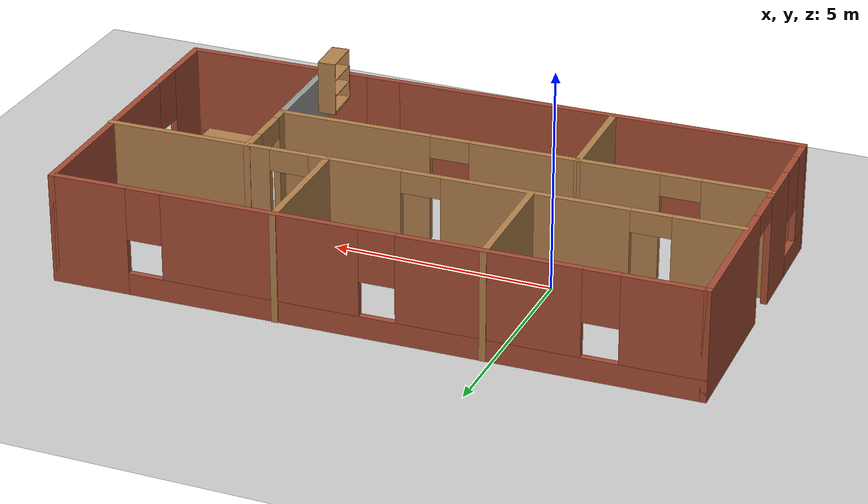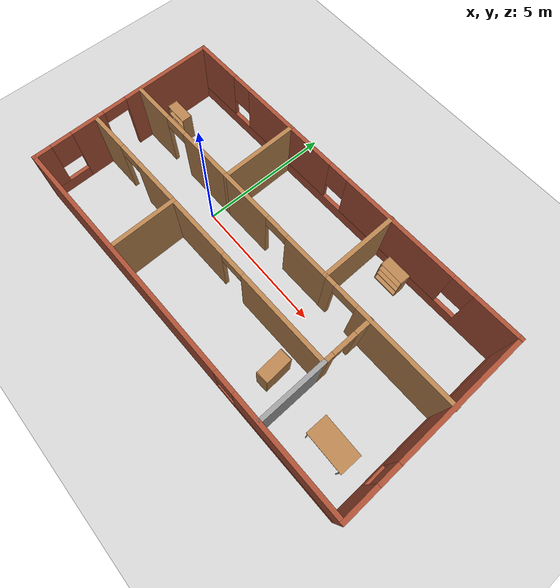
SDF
<sdf version="1.7">
 <world name="default">
  <light name="sun" type="directional">
   <pose>0 0 10 0 -0 0</pose>
   <diffuse>0.8 0.8 0.8 1</diffuse>
   <specular>0.2 0.2 0.2 1</specular>
   <attenuation>
    <range>1000</range>
    <constant>0.9</constant>
    <linear>0.01</linear>
    <quadratic>0.001</quadratic>
   </attenuation>
   <direction>-0.5 0.1 -0.9</direction>
   <spot><inner_angle>0</inner_angle><outer_angle>0</outer_angle><falloff>0</falloff></spot>
  </light>
  <model name="ground_plane">
   <static>1</static>
   <link name="link">
    <collision name="collision">
     <geometry><plane><normal>0 0 1</normal><size>100 100</size></plane></geometry>
     <surface><friction><ode><mu>100</mu><mu2>50</mu2></ode></friction></surface>
    </collision>
    <visual name="visual">
     <cast_shadows>0</cast_shadows>
     <geometry><plane><normal>0 0 1</normal><size>100 100</size></plane></geometry>
     <material>
      <script><uri>file://media/materials/scripts/gazebo.material</uri><name>Gazebo/Grey</name></script>
     </material>
    </visual>
   </link>
  </model>
  <gravity>0 0 -9.8</gravity>
  <magnetic_field>6e-06 2.3e-05 -4.2e-05</magnetic_field>
  <atmosphere type="adiabatic"/>
  <physics type="ode">
   <max_step_size>0.001</max_step_size>
   <real_time_factor>1</real_time_factor>
   <real_time_update_rate>1000</real_time_update_rate>
  </physics>
  <scene><ambient>0.4 0.4 0.4 1</ambient><background>0.7 0.7 0.7 1</background><shadows>1</shadows></scene>
  <audio><device>default</device></audio>
  <spherical_coordinates>
   <surface_model>EARTH_WGS84</surface_model>
   <latitude_deg>0</latitude_deg>
   <longitude_deg>0</longitude_deg>
   <elevation>0</elevation>
   <heading_deg>0</heading_deg>
  </spherical_coordinates>
  <model name="my_house">
   <pose>2.79719 -0.053628 0 0 0 -3.11693</pose>
   <link name="Wall_0">
    <pose>-7.165 0.01 0 0 -0 -1.5708</pose>
    <visual name="Wall_0_Visual_0">
     <pose>-2.9475 0 1.25 0 -0 0</pose>
     <geometry><box><size>1.355 0.15 2.5</size></box></geometry>
     <material>
      <script><uri>file://media/materials/scripts/gazebo.material</uri><name>Gazebo/Bricks</name></script>
      <ambient>1 1 1 1</ambient>
     </material>
     <meta><layer>0</layer></meta>
    </visual>
    <collision name="Wall_0_Collision_0">
     <geometry><box><size>1.355 0.15 2.5</size></box></geometry>
     <pose>-2.9475 0 1.25 0 -0 0</pose>
    </collision>
    <visual name="Wall_0_Visual_1">
     <pose>0.6775 0 0.25 0 -0 0</pose>
     <geometry><box><size>5.895 0.15 0.5</size></box></geometry>
     <material>
      <script><uri>file://media/materials/scripts/gazebo.material</uri><name>Gazebo/Bricks</name></script>
      <ambient>1 1 1 1</ambient>
     </material>
     <meta><layer>0</layer></meta>
    </visual>
    <collision name="Wall_0_Collision_1">
     <geometry><box><size>5.895 0.15 0.5</size></box></geometry>
     <pose>0.6775 0 0.25 0 -0 0</pose>
    </collision>
    <visual name="Wall_0_Visual_2">
     <pose>1.0775 0 1.5 0 -0 0</pose>
     <geometry><box><size>5.095 0.15 2</size></box></geometry>
     <material>
      <script><uri>file://media/materials/scripts/gazebo.material</uri><name>Gazebo/Bricks</name></script>
      <ambient>1 1 1 1</ambient>
     </material>
     <meta><layer>0</layer></meta>
    </visual>
    <collision name="Wall_0_Collision_2">
     <geometry><box><size>5.095 0.15 2</size></box></geometry>
     <pose>1.0775 0 1.5 0 -0 0</pose>
    </collision>
    <visual name="Wall_0_Visual_3">
     <pose>-1.87 0 1.9 0 -0 0</pose>
     <geometry><box><size>0.8 0.15 1.2</size></box></geometry>
     <material>
      <script><uri>file://media/materials/scripts/gazebo.material</uri><name>Gazebo/Bricks</name></script>
      <ambient>1 1 1 1</ambient>
     </material>
     <meta><layer>0</layer></meta>
    </visual>
    <collision name="Wall_0_Collision_3">
     <geometry><box><size>0.8 0.15 1.2</size></box></geometry>
     <pose>-1.87 0 1.9 0 -0 0</pose>
    </collision>
   </link>
   <link name="Wall_1">
    <pose>0.01 -3.54 0 0 -0 0</pose>
    <visual name="Wall_1_Visual_0">
     <pose>-6.3525 0 1.25 0 -0 0</pose>
     <geometry><box><size>1.795 0.15 2.5</size></box></geometry>
     <material>
      <script><uri>file://media/materials/scripts/gazebo.material</uri><name>Gazebo/Bricks</name></script>
      <ambient>1 1 1 1</ambient>
     </material>
     <meta><layer>0</layer></meta>
    </visual>
    <collision name="Wall_1_Collision_0">
     <geometry><box><size>1.795 0.15 2.5</size></box></geometry>
     <pose>-6.3525 0 1.25 0 -0 0</pose>
    </collision>
    <visual name="Wall_1_Visual_1">
     <pose>0.8975 0 0.25 0 -0 0</pose>
     <geometry><box><size>12.705 0.15 0.5</size></box></geometry>
     <material>
      <script><uri>file://media/materials/scripts/gazebo.material</uri><name>Gazebo/Bricks</name></script>
      <ambient>1 1 1 1</ambient>
     </material>
     <meta><layer>0</layer></meta>
    </visual>
    <collision name="Wall_1_Collision_1">
     <geometry><box><size>12.705 0.15 0.5</size></box></geometry>
     <pose>0.8975 0 0.25 0 -0 0</pose>
    </collision>
    <visual name="Wall_1_Visual_2">
     <pose>-2.43 0 1.5 0 -0 0</pose>
     <geometry><box><size>4.45 0.15 2</size></box></geometry>
     <material>
      <script><uri>file://media/materials/scripts/gazebo.material</uri><name>Gazebo/Bricks</name></script>
      <ambient>1 1 1 1</ambient>
     </material>
     <meta><layer>0</layer></meta>
    </visual>
    <collision name="Wall_1_Collision_2">
     <geometry><box><size>4.45 0.15 2</size></box></geometry>
     <pose>-2.43 0 1.5 0 -0 0</pose>
    </collision>
    <visual name="Wall_1_Visual_3">
     <pose>2.595 0 1.5 0 -0 0</pose>
     <geometry><box><size>4 0.15 2</size></box></geometry>
     <material>
      <script><uri>file://media/materials/scripts/gazebo.material</uri><name>Gazebo/Bricks</name></script>
      <ambient>1 1 1 1</ambient>
     </material>
     <meta><layer>0</layer></meta>
    </visual>
    <collision name="Wall_1_Collision_3">
     <geometry><box><size>4 0.15 2</size></box></geometry>
     <pose>2.595 0 1.5 0 -0 0</pose>
    </collision>
    <visual name="Wall_1_Visual_4">
     <pose>6.3225 0 1.5 0 -0 0</pose>
     <geometry><box><size>1.855 0.15 2</size></box></geometry>
     <material>
      <script><uri>file://media/materials/scripts/gazebo.material</uri><name>Gazebo/Bricks</name></script>
      <ambient>1 1 1 1</ambient>
     </material>
     <meta><layer>0</layer></meta>
    </visual>
    <collision name="Wall_1_Collision_4">
     <geometry><box><size>1.855 0.15 2</size></box></geometry>
     <pose>6.3225 0 1.5 0 -0 0</pose>
    </collision>
    <visual name="Wall_1_Visual_5">
     <pose>-5.055 0 1.9 0 -0 0</pose>
     <geometry><box><size>0.8 0.15 1.2</size></box></geometry>
     <material>
      <script><uri>file://media/materials/scripts/gazebo.material</uri><name>Gazebo/Bricks</name></script>
      <ambient>1 1 1 1</ambient>
     </material>
     <meta><layer>0</layer></meta>
    </visual>
    <collision name="Wall_1_Collision_5">
     <geometry><box><size>0.8 0.15 1.2</size></box></geometry>
     <pose>-5.055 0 1.9 0 -0 0</pose>
    </collision>
    <visual name="Wall_1_Visual_6">
     <pose>0.195 0 1.9 0 -0 0</pose>
     <geometry><box><size>0.8 0.15 1.2</size></box></geometry>
     <material>
      <script><uri>file://media/materials/scripts/gazebo.material</uri><name>Gazebo/Bricks</name></script>
      <ambient>1 1 1 1</ambient>
     </material>
     <meta><layer>0</layer></meta>
    </visual>
    <collision name="Wall_1_Collision_6">
     <geometry><box><size>0.8 0.15 1.2</size></box></geometry>
     <pose>0.195 0 1.9 0 -0 0</pose>
    </collision>
    <visual name="Wall_1_Visual_7">
     <pose>4.995 0 1.9 0 -0 0</pose>
     <geometry><box><size>0.8 0.15 1.2</size></box></geometry>
     <material>
      <script><uri>file://media/materials/scripts/gazebo.material</uri><name>Gazebo/Bricks</name></script>
      <ambient>1 1 1 1</ambient>
     </material>
     <meta><layer>0</layer></meta>
    </visual>
    <collision name="Wall_1_Collision_7">
     <geometry><box><size>0.8 0.15 1.2</size></box></geometry>
     <pose>4.995 0 1.9 0 -0 0</pose>
    </collision>
   </link>
   <link name="Wall_11">
    <pose>-0.51 1.13 0 0 -0 3.14159</pose>
    <visual name="Wall_11_Visual_0">
     <pose>-2.2375 0 1.25 0 -0 0</pose>
     <geometry><box><size>2.525 0.15 2.5</size></box></geometry>
     <material>
      <script><uri>file://media/materials/scripts/gazebo.material</uri><name>Gazebo/Wood</name></script>
      <ambient>1 1 1 1</ambient>
     </material>
     <meta><layer>0</layer></meta>
    </visual>
    <collision name="Wall_11_Collision_0">
     <geometry><box><size>2.525 0.15 2.5</size></box></geometry>
     <pose>-2.2375 0 1.25 0 -0 0</pose>
    </collision>
    <visual name="Wall_11_Visual_1">
     <pose>1.7125 0 1.25 0 -0 0</pose>
     <geometry><box><size>3.575 0.15 2.5</size></box></geometry>
     <material>
      <script><uri>file://media/materials/scripts/gazebo.material</uri><name>Gazebo/Wood</name></script>
      <ambient>1 1 1 1</ambient>
     </material>
     <meta><layer>0</layer></meta>
    </visual>
    <collision name="Wall_11_Collision_1">
     <geometry><box><size>3.575 0.15 2.5</size></box></geometry>
     <pose>1.7125 0 1.25 0 -0 0</pose>
    </collision>
    <visual name="Wall_11_Visual_2">
     <pose>-0.525 0 2.25 0 -0 0</pose>
     <geometry><box><size>0.9 0.15 0.5</size></box></geometry>
     <material>
      <script><uri>file://media/materials/scripts/gazebo.material</uri><name>Gazebo/Wood</name></script>
      <ambient>1 1 1 1</ambient>
     </material>
     <meta><layer>0</layer></meta>
    </visual>
    <collision name="Wall_11_Collision_2">
     <geometry><box><size>0.9 0.15 0.5</size></box></geometry>
     <pose>-0.525 0 2.25 0 -0 0</pose>
    </collision>
   </link>
   <link name="Wall_12">
    <collision name="Wall_12_Collision">
     <geometry><box><size>2.5 0.15 2.5</size></box></geometry>
     <pose>0 0 1.25 0 -0 0</pose>
    </collision>
    <visual name="Wall_12_Visual">
     <pose>0 0 1.25 0 -0 0</pose>
     <geometry><box><size>2.5 0.15 2.5</size></box></geometry>
     <material>
      <script><uri>file://media/materials/scripts/gazebo.material</uri><name>Gazebo/Grey</name></script>
      <ambient>1 1 1 1</ambient>
     </material>
     <meta><layer>0</layer></meta>
    </visual>
    <pose>-3.935 2.305 0 0 -0 1.5708</pose>
   </link>
   <link name="Wall_14">
    <pose>0.215 -0.71 0 0 -0 3.14159</pose>
    <visual name="Wall_14_Visual_0">
     <pose>-1.3375 0 1.25 0 -0 0</pose>
     <geometry><box><size>2.075 0.15 2.5</size></box></geometry>
     <material>
      <script><uri>file://media/materials/scripts/gazebo.material</uri><name>Gazebo/Wood</name></script>
      <ambient>1 1 1 1</ambient>
     </material>
     <meta><layer>0</layer></meta>
    </visual>
    <collision name="Wall_14_Collision_0">
     <geometry><box><size>2.075 0.15 2.5</size></box></geometry>
     <pose>-1.3375 0 1.25 0 -0 0</pose>
    </collision>
    <visual name="Wall_14_Visual_1">
     <pose>1.4875 0 1.25 0 -0 0</pose>
     <geometry><box><size>1.775 0.15 2.5</size></box></geometry>
     <material>
      <script><uri>file://media/materials/scripts/gazebo.material</uri><name>Gazebo/Wood</name></script>
      <ambient>1 1 1 1</ambient>
     </material>
     <meta><layer>0</layer></meta>
    </visual>
    <collision name="Wall_14_Collision_1">
     <geometry><box><size>1.775 0.15 2.5</size></box></geometry>
     <pose>1.4875 0 1.25 0 -0 0</pose>
    </collision>
    <visual name="Wall_14_Visual_2">
     <pose>0.15 0 2.25 0 -0 0</pose>
     <geometry><box><size>0.9 0.15 0.5</size></box></geometry>
     <material>
      <script><uri>file://media/materials/scripts/gazebo.material</uri><name>Gazebo/Wood</name></script>
      <ambient>1 1 1 1</ambient>
     </material>
     <meta><layer>0</layer></meta>
    </visual>
    <collision name="Wall_14_Collision_2">
     <geometry><box><size>0.9 0.15 0.5</size></box></geometry>
     <pose>0.15 0 2.25 0 -0 0</pose>
    </collision>
   </link>
   <link name="Wall_15">
    <collision name="Wall_15_Collision">
     <geometry><box><size>3 0.15 2.5</size></box></geometry>
     <pose>0 0 1.25 0 -0 0</pose>
    </collision>
    <visual name="Wall_15_Visual">
     <pose>0 0 1.25 0 -0 0</pose>
     <geometry><box><size>3 0.15 2.5</size></box></geometry>
     <material>
      <script><uri>file://media/materials/scripts/gazebo.material</uri><name>Gazebo/Wood</name></script>
      <ambient>1 1 1 1</ambient>
     </material>
     <meta><layer>0</layer></meta>
    </visual>
    <pose>-2.085 -2.135 0 0 -0 -1.5708</pose>
   </link>
   <link name="Wall_17">
    <pose>-4.635 -0.71 0 0 -0 3.14159</pose>
    <visual name="Wall_17_Visual_0">
     <pose>-2.3775 0 1.25 0 -0 0</pose>
     <geometry><box><size>0.495 0.15 2.5</size></box></geometry>
     <material>
      <script><uri>file://media/materials/scripts/gazebo.material</uri><name>Gazebo/Wood</name></script>
      <ambient>1 1 1 1</ambient>
     </material>
     <meta><layer>0</layer></meta>
    </visual>
    <collision name="Wall_17_Collision_0">
     <geometry><box><size>0.495 0.15 2.5</size></box></geometry>
     <pose>-2.3775 0 1.25 0 -0 0</pose>
    </collision>
    <visual name="Wall_17_Visual_1">
     <pose>0.6975 0 1.25 0 -0 0</pose>
     <geometry><box><size>3.855 0.15 2.5</size></box></geometry>
     <material>
      <script><uri>file://media/materials/scripts/gazebo.material</uri><name>Gazebo/Wood</name></script>
      <ambient>1 1 1 1</ambient>
     </material>
     <meta><layer>0</layer></meta>
    </visual>
    <collision name="Wall_17_Collision_1">
     <geometry><box><size>3.855 0.15 2.5</size></box></geometry>
     <pose>0.6975 0 1.25 0 -0 0</pose>
    </collision>
    <visual name="Wall_17_Visual_2">
     <pose>-1.68 0 2.25 0 -0 0</pose>
     <geometry><box><size>0.9 0.15 0.5</size></box></geometry>
     <material>
      <script><uri>file://media/materials/scripts/gazebo.material</uri><name>Gazebo/Wood</name></script>
      <ambient>1 1 1 1</ambient>
     </material>
     <meta><layer>0</layer></meta>
    </visual>
    <collision name="Wall_17_Collision_2">
     <geometry><box><size>0.9 0.15 0.5</size></box></geometry>
     <pose>-1.68 0 2.25 0 -0 0</pose>
    </collision>
   </link>
   <link name="Wall_19">
    <pose>-3.935 0.205 0 0 -0 -1.5708</pose>
    <visual name="Wall_19_Visual_0">
     <pose>-0.7825 0 1.25 0 -0 0</pose>
     <geometry><box><size>0.435 0.15 2.5</size></box></geometry>
     <material>
      <script><uri>file://media/materials/scripts/gazebo.material</uri><name>Gazebo/Wood</name></script>
      <ambient>1 1 1 1</ambient>
     </material>
     <meta><layer>0</layer></meta>
    </visual>
    <collision name="Wall_19_Collision_0">
     <geometry><box><size>0.435 0.15 2.5</size></box></geometry>
     <pose>-0.7825 0 1.25 0 -0 0</pose>
    </collision>
    <visual name="Wall_19_Visual_1">
     <pose>0.6675 0 1.25 0 -0 0</pose>
     <geometry><box><size>0.665 0.15 2.5</size></box></geometry>
     <material>
      <script><uri>file://media/materials/scripts/gazebo.material</uri><name>Gazebo/Wood</name></script>
      <ambient>1 1 1 1</ambient>
     </material>
     <meta><layer>0</layer></meta>
    </visual>
    <collision name="Wall_19_Collision_1">
     <geometry><box><size>0.665 0.15 2.5</size></box></geometry>
     <pose>0.6675 0 1.25 0 -0 0</pose>
    </collision>
    <visual name="Wall_19_Visual_2">
     <pose>-0.115 0 2.25 0 -0 0</pose>
     <geometry><box><size>0.9 0.15 0.5</size></box></geometry>
     <material>
      <script><uri>file://media/materials/scripts/gazebo.material</uri><name>Gazebo/Wood</name></script>
      <ambient>1 1 1 1</ambient>
     </material>
     <meta><layer>0</layer></meta>
    </visual>
    <collision name="Wall_19_Collision_2">
     <geometry><box><size>0.9 0.15 0.5</size></box></geometry>
     <pose>-0.115 0 2.25 0 -0 0</pose>
    </collision>
   </link>
   <link name="Wall_2">
    <pose>7.185 0.01 0 0 -0 1.5708</pose>
    <visual name="Wall_2_Visual_0">
     <pose>-1.8525 0 1.25 0 -0 0</pose>
     <geometry><box><size>3.545 0.15 2.5</size></box></geometry>
     <material>
      <script><uri>file://media/materials/scripts/gazebo.material</uri><name>Gazebo/Bricks</name></script>
      <ambient>1 1 1 1</ambient>
     </material>
     <meta><layer>0</layer></meta>
    </visual>
    <collision name="Wall_2_Collision_0">
     <geometry><box><size>3.545 0.15 2.5</size></box></geometry>
     <pose>-1.8525 0 1.25 0 -0 0</pose>
    </collision>
    <visual name="Wall_2_Visual_1">
     <pose>1.47 0 1.25 0 -0 0</pose>
     <geometry><box><size>1.3 0.15 2.5</size></box></geometry>
     <material>
      <script><uri>file://media/materials/scripts/gazebo.material</uri><name>Gazebo/Bricks</name></script>
      <ambient>1 1 1 1</ambient>
     </material>
     <meta><layer>0</layer></meta>
    </visual>
    <collision name="Wall_2_Collision_1">
     <geometry><box><size>1.3 0.15 2.5</size></box></geometry>
     <pose>1.47 0 1.25 0 -0 0</pose>
    </collision>
    <visual name="Wall_2_Visual_2">
     <pose>2.8725 0 0.25 0 -0 0</pose>
     <geometry><box><size>1.505 0.15 0.5</size></box></geometry>
     <material>
      <script><uri>file://media/materials/scripts/gazebo.material</uri><name>Gazebo/Bricks</name></script>
      <ambient>1 1 1 1</ambient>
     </material>
     <meta><layer>0</layer></meta>
    </visual>
    <collision name="Wall_2_Collision_2">
     <geometry><box><size>1.505 0.15 0.5</size></box></geometry>
     <pose>2.8725 0 0.25 0 -0 0</pose>
    </collision>
    <visual name="Wall_2_Visual_3">
     <pose>3.2725 0 1.5 0 -0 0</pose>
     <geometry><box><size>0.705 0.15 2</size></box></geometry>
     <material>
      <script><uri>file://media/materials/scripts/gazebo.material</uri><name>Gazebo/Bricks</name></script>
      <ambient>1 1 1 1</ambient>
     </material>
     <meta><layer>0</layer></meta>
    </visual>
    <collision name="Wall_2_Collision_3">
     <geometry><box><size>0.705 0.15 2</size></box></geometry>
     <pose>3.2725 0 1.5 0 -0 0</pose>
    </collision>
    <visual name="Wall_2_Visual_4">
     <pose>2.52 0 1.9 0 -0 0</pose>
     <geometry><box><size>0.8 0.15 1.2</size></box></geometry>
     <material>
      <script><uri>file://media/materials/scripts/gazebo.material</uri><name>Gazebo/Bricks</name></script>
      <ambient>1 1 1 1</ambient>
     </material>
     <meta><layer>0</layer></meta>
    </visual>
    <collision name="Wall_2_Collision_4">
     <geometry><box><size>0.8 0.15 1.2</size></box></geometry>
     <pose>2.52 0 1.9 0 -0 0</pose>
    </collision>
    <visual name="Wall_2_Visual_5">
     <pose>0.37 0 2.25 0 -0 0</pose>
     <geometry><box><size>0.9 0.15 0.5</size></box></geometry>
     <material>
      <script><uri>file://media/materials/scripts/gazebo.material</uri><name>Gazebo/Bricks</name></script>
      <ambient>1 1 1 1</ambient>
     </material>
     <meta><layer>0</layer></meta>
    </visual>
    <collision name="Wall_2_Collision_5">
     <geometry><box><size>0.9 0.15 0.5</size></box></geometry>
     <pose>0.37 0 2.25 0 -0 0</pose>
    </collision>
   </link>
   <link name="Wall_3">
    <pose>0.01 3.56 0 0 -0 3.14159</pose>
    <visual name="Wall_3_Visual_0">
     <pose>-2.5675 0 1.25 0 -0 0</pose>
     <geometry><box><size>9.365 0.15 2.5</size></box></geometry>
     <material>
      <script><uri>file://media/materials/scripts/gazebo.material</uri><name>Gazebo/Bricks</name></script>
      <ambient>1 1 1 1</ambient>
     </material>
     <meta><layer>0</layer></meta>
    </visual>
    <collision name="Wall_3_Collision_0">
     <geometry><box><size>9.365 0.15 2.5</size></box></geometry>
     <pose>-2.5675 0 1.25 0 -0 0</pose>
    </collision>
    <visual name="Wall_3_Visual_1">
     <pose>4.6825 0 0.25 0 -0 0</pose>
     <geometry><box><size>5.135 0.15 0.5</size></box></geometry>
     <material>
      <script><uri>file://media/materials/scripts/gazebo.material</uri><name>Gazebo/Bricks</name></script>
      <ambient>1 1 1 1</ambient>
     </material>
     <meta><layer>0</layer></meta>
    </visual>
    <collision name="Wall_3_Collision_1">
     <geometry><box><size>5.135 0.15 0.5</size></box></geometry>
     <pose>4.6825 0 0.25 0 -0 0</pose>
    </collision>
    <visual name="Wall_3_Visual_2">
     <pose>5.0825 0 1.5 0 -0 0</pose>
     <geometry><box><size>4.335 0.15 2</size></box></geometry>
     <material>
      <script><uri>file://media/materials/scripts/gazebo.material</uri><name>Gazebo/Bricks</name></script>
      <ambient>1 1 1 1</ambient>
     </material>
     <meta><layer>0</layer></meta>
    </visual>
    <collision name="Wall_3_Collision_2">
     <geometry><box><size>4.335 0.15 2</size></box></geometry>
     <pose>5.0825 0 1.5 0 -0 0</pose>
    </collision>
    <visual name="Wall_3_Visual_3">
     <pose>2.515 0 1.9 0 -0 0</pose>
     <geometry><box><size>0.8 0.15 1.2</size></box></geometry>
     <material>
      <script><uri>file://media/materials/scripts/gazebo.material</uri><name>Gazebo/Bricks</name></script>
      <ambient>1 1 1 1</ambient>
     </material>
     <meta><layer>0</layer></meta>
    </visual>
    <collision name="Wall_3_Collision_3">
     <geometry><box><size>0.8 0.15 1.2</size></box></geometry>
     <pose>2.515 0 1.9 0 -0 0</pose>
    </collision>
   </link>
   <link name="Wall_5">
    <collision name="Wall_5_Collision">
     <geometry><box><size>2.5 0.15 2.5</size></box></geometry>
     <pose>0 0 1.25 0 -0 0</pose>
    </collision>
    <visual name="Wall_5_Visual">
     <pose>0 0 1.25 0 -0 0</pose>
     <geometry><box><size>2.5 0.15 2.5</size></box></geometry>
     <material>
      <script><uri>file://media/materials/scripts/gazebo.material</uri><name>Gazebo/Wood</name></script>
      <ambient>1 1 1 1</ambient>
     </material>
     <meta><layer>0</layer></meta>
    </visual>
    <pose>2.915 2.305 0 0 -0 -1.5708</pose>
   </link>
   <link name="Wall_6">
    <pose>5.045 1.135 0 0 -0 0.002347</pose>
    <visual name="Wall_6_Visual_0">
     <pose>-1.24747 0 1.25 0 -0 0</pose>
     <geometry><box><size>1.91506 0.15 2.5</size></box></geometry>
     <material>
      <script><uri>file://media/materials/scripts/gazebo.material</uri><name>Gazebo/Wood</name></script>
      <ambient>1 1 1 1</ambient>
     </material>
     <meta><layer>0</layer></meta>
    </visual>
    <collision name="Wall_6_Collision_0">
     <geometry><box><size>1.91506 0.15 2.5</size></box></geometry>
     <pose>-1.24747 0 1.25 0 -0 0</pose>
    </collision>
    <visual name="Wall_6_Visual_1">
     <pose>1.40753 0 1.25 0 -0 0</pose>
     <geometry><box><size>1.59495 0.15 2.5</size></box></geometry>
     <material>
      <script><uri>file://media/materials/scripts/gazebo.material</uri><name>Gazebo/Wood</name></script>
      <ambient>1 1 1 1</ambient>
     </material>
     <meta><layer>0</layer></meta>
    </visual>
    <collision name="Wall_6_Collision_1">
     <geometry><box><size>1.59495 0.15 2.5</size></box></geometry>
     <pose>1.40753 0 1.25 0 -0 0</pose>
    </collision>
    <visual name="Wall_6_Visual_2">
     <pose>0.160058 0 2.25 0 -0 0</pose>
     <geometry><box><size>0.9 0.15 0.5</size></box></geometry>
     <material>
      <script><uri>file://media/materials/scripts/gazebo.material</uri><name>Gazebo/Wood</name></script>
      <ambient>1 1 1 1</ambient>
     </material>
     <meta><layer>0</layer></meta>
    </visual>
    <collision name="Wall_6_Collision_2">
     <geometry><box><size>0.9 0.15 0.5</size></box></geometry>
     <pose>0.160058 0 2.25 0 -0 0</pose>
    </collision>
   </link>
   <link name="Wall_8">
    <pose>4.815 -0.71 0 0 -0 3.14159</pose>
    <visual name="Wall_8_Visual_0">
     <pose>-1.5725 0 1.25 0 -0 0</pose>
     <geometry><box><size>1.605 0.15 2.5</size></box></geometry>
     <material>
      <script><uri>file://media/materials/scripts/gazebo.material</uri><name>Gazebo/Wood</name></script>
      <ambient>1 1 1 1</ambient>
     </material>
     <meta><layer>0</layer></meta>
    </visual>
    <collision name="Wall_8_Collision_0">
     <geometry><box><size>1.605 0.15 2.5</size></box></geometry>
     <pose>-1.5725 0 1.25 0 -0 0</pose>
    </collision>
    <visual name="Wall_8_Visual_1">
     <pose>1.2525 0 1.25 0 -0 0</pose>
     <geometry><box><size>2.245 0.15 2.5</size></box></geometry>
     <material>
      <script><uri>file://media/materials/scripts/gazebo.material</uri><name>Gazebo/Wood</name></script>
      <ambient>1 1 1 1</ambient>
     </material>
     <meta><layer>0</layer></meta>
    </visual>
    <collision name="Wall_8_Collision_1">
     <geometry><box><size>2.245 0.15 2.5</size></box></geometry>
     <pose>1.2525 0 1.25 0 -0 0</pose>
    </collision>
    <visual name="Wall_8_Visual_2">
     <pose>-0.32 0 2.25 0 -0 0</pose>
     <geometry><box><size>0.9 0.15 0.5</size></box></geometry>
     <material>
      <script><uri>file://media/materials/scripts/gazebo.material</uri><name>Gazebo/Wood</name></script>
      <ambient>1 1 1 1</ambient>
     </material>
     <meta><layer>0</layer></meta>
    </visual>
    <collision name="Wall_8_Collision_2">
     <geometry><box><size>0.9 0.15 0.5</size></box></geometry>
     <pose>-0.32 0 2.25 0 -0 0</pose>
    </collision>
   </link>
   <link name="Wall_9">
    <collision name="Wall_9_Collision">
     <geometry><box><size>2.99016 0.15 2.5</size></box></geometry>
     <pose>0 0 1.25 0 -0 0</pose>
    </collision>
    <visual name="Wall_9_Visual">
     <pose>0 0 1.25 0 -0 0</pose>
     <geometry><box><size>2.99016 0.15 2.5</size></box></geometry>
     <material>
      <script><uri>file://media/materials/scripts/gazebo.material</uri><name>Gazebo/Wood</name></script>
      <ambient>1 1 1 1</ambient>
     </material>
     <meta><layer>0</layer></meta>
    </visual>
    <pose>2.515 -2.13 0 0 -0 -1.5708</pose>
   </link>
   <static>1</static>
  </model>
  <model name="table">
   <static>1</static>
   <link name="link">
    <collision name="surface">
     <pose>0 0 1 0 -0 0</pose>
     <geometry><box><size>1.5 0.8 0.03</size></box></geometry>
     <surface><friction><ode><mu>0.6</mu><mu2>0.6</mu2></ode></friction></surface>
    </collision>
    <visual name="visual1">
     <pose>0 0 1 0 -0 0</pose>
     <geometry><box><size>1.5 0.8 0.03</size></box></geometry>
     <material>
      <script><uri>file://media/materials/scripts/gazebo.material</uri><name>Gazebo/Wood</name></script>
     </material>
    </visual>
    <collision name="front_left_leg">
     <pose>0.68 0.38 0.5 0 -0 0</pose>
     <geometry><cylinder><radius>0.02</radius><length>1</length></cylinder></geometry>
    </collision>
    <visual name="front_left_leg">
     <pose>0.68 0.38 0.5 0 -0 0</pose>
     <geometry><cylinder><radius>0.02</radius><length>1</length></cylinder></geometry>
     <material>
      <script><uri>file://media/materials/scripts/gazebo.material</uri><name>Gazebo/Grey</name></script>
     </material>
    </visual>
    <collision name="front_right_leg">
     <pose>0.68 -0.38 0.5 0 -0 0</pose>
     <geometry><cylinder><radius>0.02</radius><length>1</length></cylinder></geometry>
    </collision>
    <visual name="front_right_leg">
     <pose>0.68 -0.38 0.5 0 -0 0</pose>
     <geometry><cylinder><radius>0.02</radius><length>1</length></cylinder></geometry>
     <material>
      <script><uri>file://media/materials/scripts/gazebo.material</uri><name>Gazebo/Grey</name></script>
     </material>
    </visual>
    <collision name="back_right_leg">
     <pose>-0.68 -0.38 0.5 0 -0 0</pose>
     <geometry><cylinder><radius>0.02</radius><length>1</length></cylinder></geometry>
    </collision>
    <visual name="back_right_leg">
     <pose>-0.68 -0.38 0.5 0 -0 0</pose>
     <geometry><cylinder><radius>0.02</radius><length>1</length></cylinder></geometry>
     <material>
      <script><uri>file://media/materials/scripts/gazebo.material</uri><name>Gazebo/Grey</name></script>
     </material>
    </visual>
    <collision name="back_left_leg">
     <pose>-0.68 0.38 0.5 0 -0 0</pose>
     <geometry><cylinder><radius>0.02</radius><length>1</length></cylinder></geometry>
    </collision>
    <visual name="back_left_leg">
     <pose>-0.68 0.38 0.5 0 -0 0</pose>
     <geometry><cylinder><radius>0.02</radius><length>1</length></cylinder></geometry>
     <material>
      <script><uri>file://media/materials/scripts/gazebo.material</uri><name>Gazebo/Grey</name></script>
     </material>
    </visual>
   </link>
   <pose>8.55011 -2.14448 0 0 -0 0</pose>
  </model>
  <model name="bookshelf">
   <static>1</static>
   <link name="link">
    <inertial><mass>1</mass></inertial>
    <collision name="back">
     <pose>0 0.005 0.6 0 -0 0</pose>
     <geometry><box><size>0.9 0.01 1.2</size></box></geometry>
    </collision>
    <visual name="visual1">
     <pose>0 0.005 0.6 0 -0 0</pose>
     <geometry><box><size>0.9 0.01 1.2</size></box></geometry>
     <material>
      <script><uri>file://media/materials/scripts/gazebo.material</uri><name>Gazebo/Wood</name></script>
     </material>
    </visual>
    <collision name="left_side">
     <pose>0.45 -0.195 0.6 0 -0 0</pose>
     <geometry><box><size>0.02 0.4 1.2</size></box></geometry>
    </collision>
    <visual name="visual2">
     <pose>0.45 -0.195 0.6 0 -0 0</pose>
     <geometry><box><size>0.02 0.4 1.2</size></box></geometry>
     <material>
      <script><uri>file://media/materials/scripts/gazebo.material</uri><name>Gazebo/Wood</name></script>
     </material>
    </visual>
    <collision name="right_side">
     <pose>-0.45 -0.195 0.6 0 -0 0</pose>
     <geometry><box><size>0.02 0.4 1.2</size></box></geometry>
    </collision>
    <visual name="visual3">
     <pose>-0.45 -0.195 0.6 0 -0 0</pose>
     <geometry><box><size>0.02 0.4 1.2</size></box></geometry>
     <material>
      <script><uri>file://media/materials/scripts/gazebo.material</uri><name>Gazebo/Wood</name></script>
     </material>
    </visual>
    <collision name="bottom">
     <pose>0 -0.195 0.03 0 -0 0</pose>
     <geometry><box><size>0.88 0.4 0.06</size></box></geometry>
    </collision>
    <visual name="visual4">
     <pose>0 -0.195 0.03 0 -0 0</pose>
     <geometry><box><size>0.88 0.4 0.06</size></box></geometry>
     <material>
      <script><uri>file://media/materials/scripts/gazebo.material</uri><name>Gazebo/Wood</name></script>
     </material>
    </visual>
    <collision name="top">
     <pose>0 -0.195 1.19 0 -0 0</pose>
     <geometry><box><size>0.88 0.4 0.02</size></box></geometry>
    </collision>
    <visual name="visual5">
     <pose>0 -0.195 1.19 0 -0 0</pose>
     <geometry><box><size>0.88 0.4 0.02</size></box></geometry>
     <material>
      <script><uri>file://media/materials/scripts/gazebo.material</uri><name>Gazebo/Wood</name></script>
     </material>
    </visual>
    <collision name="low_shelf">
     <pose>0 -0.195 0.43 0 -0 0</pose>
     <geometry><box><size>0.88 0.4 0.02</size></box></geometry>
    </collision>
    <visual name="visual6">
     <pose>0 -0.195 0.43 0 -0 0</pose>
     <geometry><box><size>0.88 0.4 0.02</size></box></geometry>
     <material>
      <script><uri>file://media/materials/scripts/gazebo.material</uri><name>Gazebo/Wood</name></script>
     </material>
    </visual>
    <collision name="high_shelf">
     <pose>0 -0.195 0.8 0 -0 0</pose>
     <geometry><box><size>0.88 0.4 0.02</size></box></geometry>
    </collision>
    <visual name="visual7">
     <pose>0 -0.195 0.8 0 -0 0</pose>
     <geometry><box><size>0.88 0.4 0.02</size></box></geometry>
     <material>
      <script><uri>file://media/materials/scripts/gazebo.material</uri><name>Gazebo/Wood</name></script>
     </material>
    </visual>
   </link>
   <pose>-3.68353 1.62881 0 0 -0 0</pose>
  </model>
  <model name="bookshelf_0">
   <static>1</static>
   <link name="link">
    <inertial><mass>1</mass></inertial>
    <collision name="back">
     <pose>0 0.005 0.6 0 -0 0</pose>
     <geometry><box><size>0.9 0.01 1.2</size></box></geometry>
    </collision>
    <visual name="visual1">
     <pose>0 0.005 0.6 0 -0 0</pose>
     <geometry><box><size>0.9 0.01 1.2</size></box></geometry>
     <material>
      <script><uri>file://media/materials/scripts/gazebo.material</uri><name>Gazebo/Wood</name></script>
     </material>
    </visual>
    <collision name="left_side">
     <pose>0.45 -0.195 0.6 0 -0 0</pose>
     <geometry><box><size>0.02 0.4 1.2</size></box></geometry>
    </collision>
    <visual name="visual2">
     <pose>0.45 -0.195 0.6 0 -0 0</pose>
     <geometry><box><size>0.02 0.4 1.2</size></box></geometry>
     <material>
      <script><uri>file://media/materials/scripts/gazebo.material</uri><name>Gazebo/Wood</name></script>
     </material>
    </visual>
    <collision name="right_side">
     <pose>-0.45 -0.195 0.6 0 -0 0</pose>
     <geometry><box><size>0.02 0.4 1.2</size></box></geometry>
    </collision>
    <visual name="visual3">
     <pose>-0.45 -0.195 0.6 0 -0 0</pose>
     <geometry><box><size>0.02 0.4 1.2</size></box></geometry>
     <material>
      <script><uri>file://media/materials/scripts/gazebo.material</uri><name>Gazebo/Wood</name></script>
     </material>
    </visual>
    <collision name="bottom">
     <pose>0 -0.195 0.03 0 -0 0</pose>
     <geometry><box><size>0.88 0.4 0.06</size></box></geometry>
    </collision>
    <visual name="visual4">
     <pose>0 -0.195 0.03 0 -0 0</pose>
     <geometry><box><size>0.88 0.4 0.06</size></box></geometry>
     <material>
      <script><uri>file://media/materials/scripts/gazebo.material</uri><name>Gazebo/Wood</name></script>
     </material>
    </visual>
    <collision name="top">
     <pose>0 -0.195 1.19 0 -0 0</pose>
     <geometry><box><size>0.88 0.4 0.02</size></box></geometry>
    </collision>
    <visual name="visual5">
     <pose>0 -0.195 1.19 0 -0 0</pose>
     <geometry><box><size>0.88 0.4 0.02</size></box></geometry>
     <material>
      <script><uri>file://media/materials/scripts/gazebo.material</uri><name>Gazebo/Wood</name></script>
     </material>
    </visual>
    <collision name="low_shelf">
     <pose>0 -0.195 0.43 0 -0 0</pose>
     <geometry><box><size>0.88 0.4 0.02</size></box></geometry>
    </collision>
    <visual name="visual6">
     <pose>0 -0.195 0.43 0 -0 0</pose>
     <geometry><box><size>0.88 0.4 0.02</size></box></geometry>
     <material>
      <script><uri>file://media/materials/scripts/gazebo.material</uri><name>Gazebo/Wood</name></script>
     </material>
    </visual>
    <collision name="high_shelf">
     <pose>0 -0.195 0.8 0 -0 0</pose>
     <geometry><box><size>0.88 0.4 0.02</size></box></geometry>
    </collision>
    <visual name="visual7">
     <pose>0 -0.195 0.8 0 -0 0</pose>
     <geometry><box><size>0.88 0.4 0.02</size></box></geometry>
     <material>
      <script><uri>file://media/materials/scripts/gazebo.material</uri><name>Gazebo/Wood</name></script>
     </material>
    </visual>
   </link>
   <pose>6.28219 -2.35001 2.22009 0 0 -1.50136</pose>
  </model>
  <model name="bookshelf_1">
   <static>1</static>
   <link name="link">
    <inertial><mass>1</mass></inertial>
    <collision name="back">
     <pose>0 0.005 0.6 0 -0 0</pose>
     <geometry><box><size>0.9 0.01 1.2</size></box></geometry>
    </collision>
    <visual name="visual1">
     <pose>0 0.005 0.6 0 -0 0</pose>
     <geometry><box><size>0.9 0.01 1.2</size></box></geometry>
     <material>
      <script><uri>file://media/materials/scripts/gazebo.material</uri><name>Gazebo/Wood</name></script>
     </material>
    </visual>
    <collision name="left_side">
     <pose>0.45 -0.195 0.6 0 -0 0</pose>
     <geometry><box><size>0.02 0.4 1.2</size></box></geometry>
    </collision>
    <visual name="visual2">
     <pose>0.45 -0.195 0.6 0 -0 0</pose>
     <geometry><box><size>0.02 0.4 1.2</size></box></geometry>
     <material>
      <script><uri>file://media/materials/scripts/gazebo.material</uri><name>Gazebo/Wood</name></script>
     </material>
    </visual>
    <collision name="right_side">
     <pose>-0.45 -0.195 0.6 0 -0 0</pose>
     <geometry><box><size>0.02 0.4 1.2</size></box></geometry>
    </collision>
    <visual name="visual3">
     <pose>-0.45 -0.195 0.6 0 -0 0</pose>
     <geometry><box><size>0.02 0.4 1.2</size></box></geometry>
     <material>
      <script><uri>file://media/materials/scripts/gazebo.material</uri><name>Gazebo/Wood</name></script>
     </material>
    </visual>
    <collision name="bottom">
     <pose>0 -0.195 0.03 0 -0 0</pose>
     <geometry><box><size>0.88 0.4 0.06</size></box></geometry>
    </collision>
    <visual name="visual4">
     <pose>0 -0.195 0.03 0 -0 0</pose>
     <geometry><box><size>0.88 0.4 0.06</size></box></geometry>
     <material>
      <script><uri>file://media/materials/scripts/gazebo.material</uri><name>Gazebo/Wood</name></script>
     </material>
    </visual>
    <collision name="top">
     <pose>0 -0.195 1.19 0 -0 0</pose>
     <geometry><box><size>0.88 0.4 0.02</size></box></geometry>
    </collision>
    <visual name="visual5">
     <pose>0 -0.195 1.19 0 -0 0</pose>
     <geometry><box><size>0.88 0.4 0.02</size></box></geometry>
     <material>
      <script><uri>file://media/materials/scripts/gazebo.material</uri><name>Gazebo/Wood</name></script>
     </material>
    </visual>
    <collision name="low_shelf">
     <pose>0 -0.195 0.43 0 -0 0</pose>
     <geometry><box><size>0.88 0.4 0.02</size></box></geometry>
    </collision>
    <visual name="visual6">
     <pose>0 -0.195 0.43 0 -0 0</pose>
     <geometry><box><size>0.88 0.4 0.02</size></box></geometry>
     <material>
      <script><uri>file://media/materials/scripts/gazebo.material</uri><name>Gazebo/Wood</name></script>
     </material>
    </visual>
    <collision name="high_shelf">
     <pose>0 -0.195 0.8 0 -0 0</pose>
     <geometry><box><size>0.88 0.4 0.02</size></box></geometry>
    </collision>
    <visual name="visual7">
     <pose>0 -0.195 0.8 0 -0 0</pose>
     <geometry><box><size>0.88 0.4 0.02</size></box></geometry>
     <material>
      <script><uri>file://media/materials/scripts/gazebo.material</uri><name>Gazebo/Wood</name></script>
     </material>
    </visual>
   </link>
   <pose>5.89991 3.21054 0 0 -0 0</pose>
  </model>
 </world>
</sdf>
